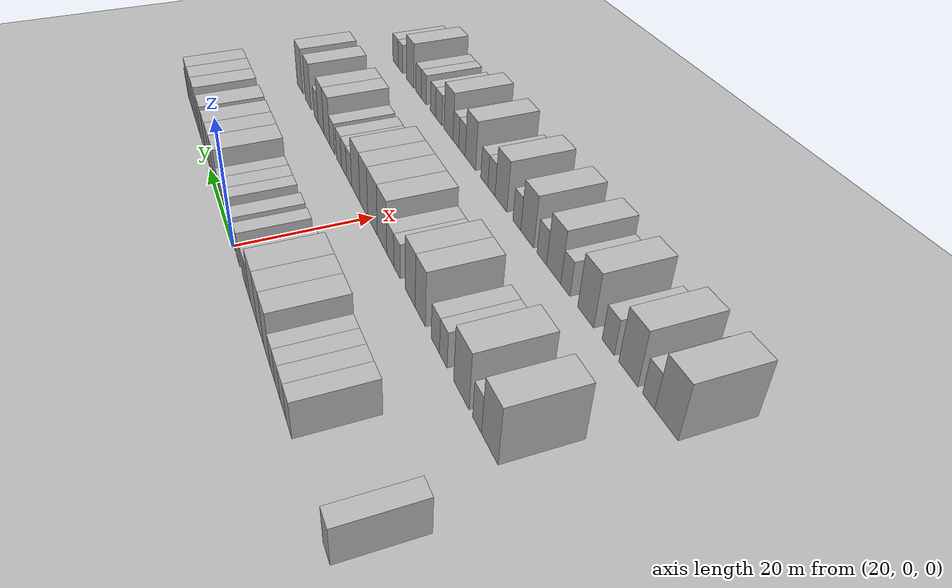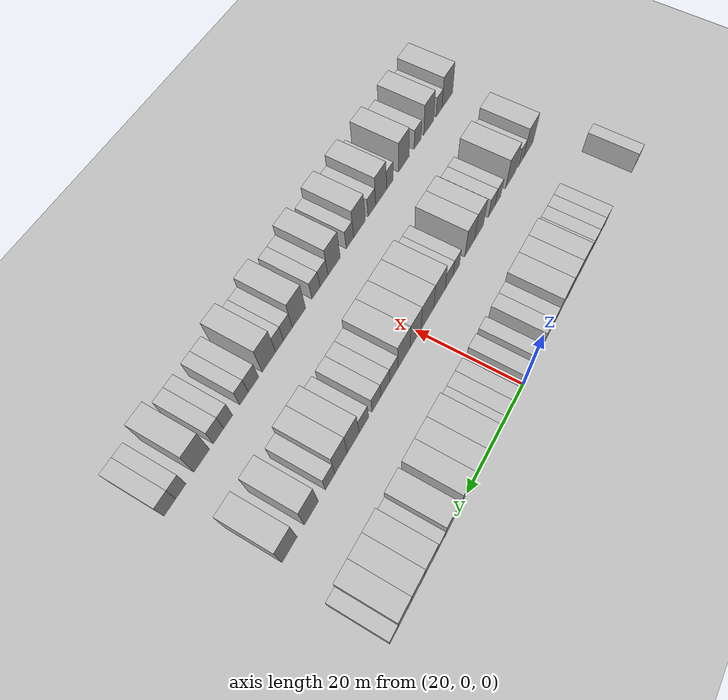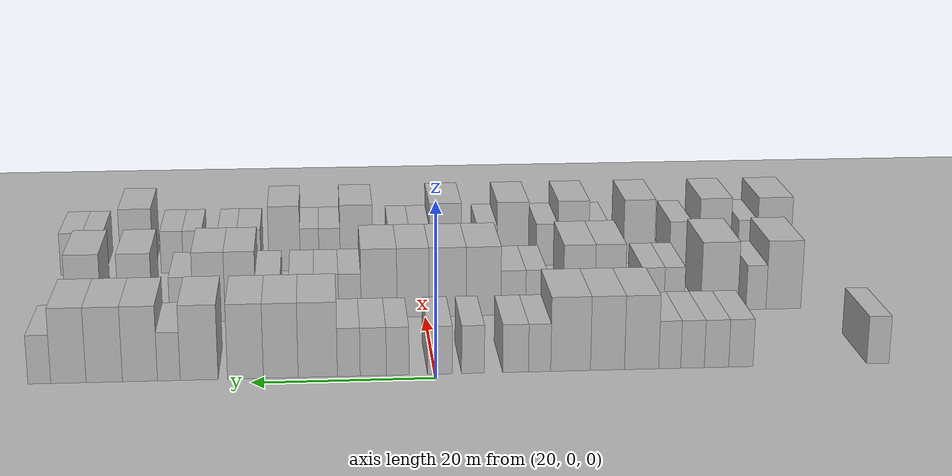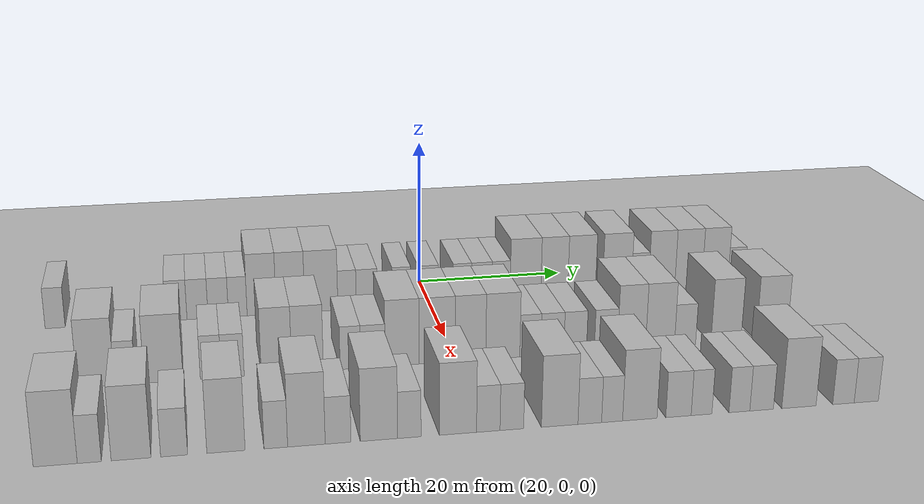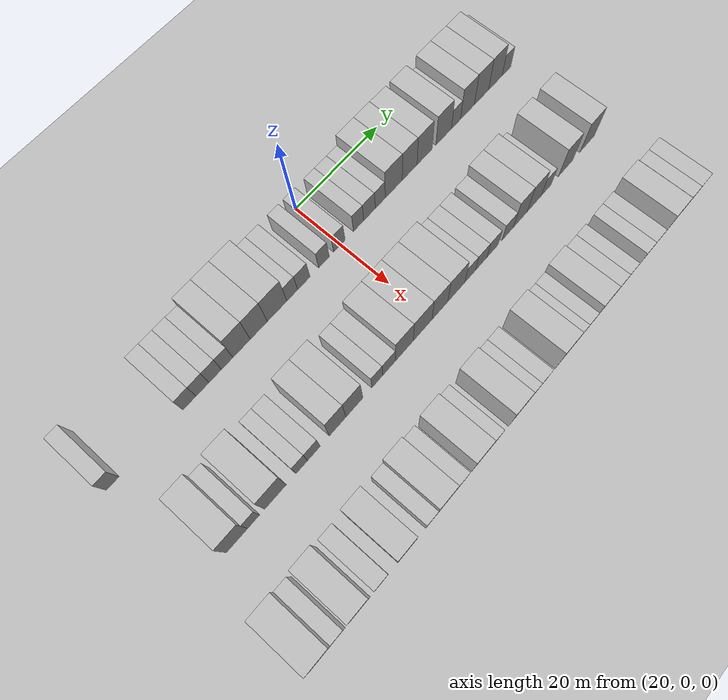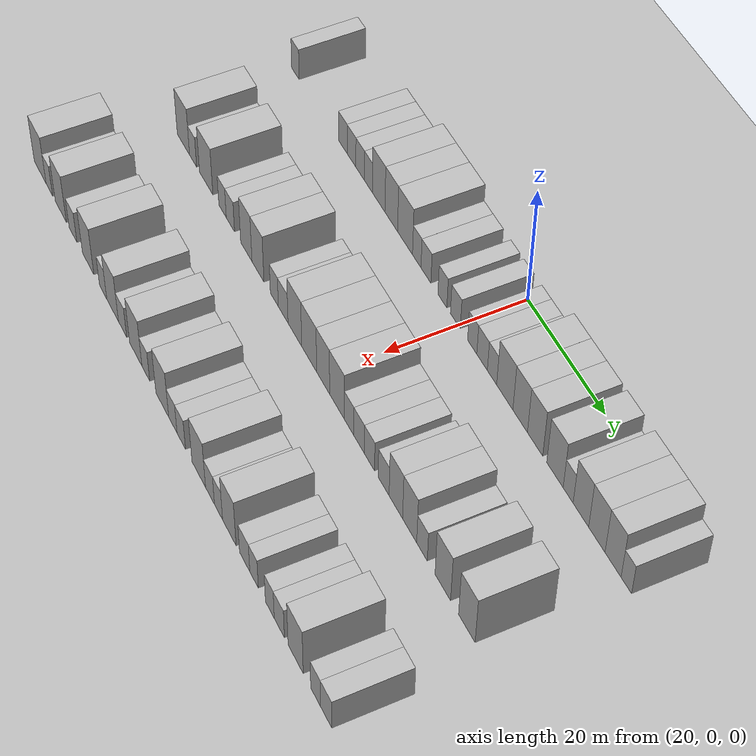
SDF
<sdf version="1.6">
 <world name="default">
  <include><name>ground_plane_1</name><uri>model://HANNAS_ground_plane</uri></include>
  <include>
   <name>ground_plane_2</name>
   <uri>model://HANNAS_ground_plane</uri>
   <pose>100 0 0  0 0 0</pose>
  </include>
  <model name="building_48">
   <static>1</static>
   <pose>25.0000 -48.8967 0 0.000000 0.000000 0.000000</pose>
   <link name="link">
    <pose>0 0 3.00 0 0 0</pose>
    <collision name="collision"><geometry><box><size>10.0000 2.5009 6.0000</size></box></geometry></collision>
    <visual name="visual">
     <cast_shadows>0</cast_shadows>
     <geometry><box><size>10.0000 2.5009 6.0000</size></box></geometry>
     <material>
      <script>
       <uri>model://HANNAS_wall/materials/scripts</uri>
       <uri>model://HANNAS_wall/materials/textures</uri>
       <name>vrc/HANNAS_wall</name>
      </script>
     </material>
    </visual>
   </link>
  </model>
  <model name="building_49">
   <static>1</static>
   <pose>25.0000 -33.5730 0 0.000000 0.000000 0.000000</pose>
   <link name="link">
    <pose>0 0 3.00 0 0 0</pose>
    <collision name="collision"><geometry><box><size>10.0000 2.7155 6.0000</size></box></geometry></collision>
    <visual name="visual">
     <cast_shadows>0</cast_shadows>
     <geometry><box><size>10.0000 2.7155 6.0000</size></box></geometry>
     <material>
      <script>
       <uri>model://HANNAS_wall/materials/scripts</uri>
       <uri>model://HANNAS_wall/materials/textures</uri>
       <name>vrc/HANNAS_wall</name>
      </script>
     </material>
    </visual>
   </link>
  </model>
  <model name="building_50">
   <static>1</static>
   <pose>25.0000 -30.8629 0 0.000000 0.000000 0.000000</pose>
   <link name="link">
    <pose>0 0 3.00 0 0 0</pose>
    <collision name="collision"><geometry><box><size>10.0000 2.7047 6.0000</size></box></geometry></collision>
    <visual name="visual">
     <cast_shadows>0</cast_shadows>
     <geometry><box><size>10.0000 2.7047 6.0000</size></box></geometry>
     <material>
      <script>
       <uri>model://HANNAS_wall/materials/scripts</uri>
       <uri>model://HANNAS_wall/materials/textures</uri>
       <name>vrc/HANNAS_wall</name>
      </script>
     </material>
    </visual>
   </link>
  </model>
  <model name="building_51">
   <static>1</static>
   <pose>25.0000 -28.1963 0 0.000000 0.000000 0.000000</pose>
   <link name="link">
    <pose>0 0 3.00 0 0 0</pose>
    <collision name="collision"><geometry><box><size>10.0000 2.6285 6.0000</size></box></geometry></collision>
    <visual name="visual">
     <cast_shadows>0</cast_shadows>
     <geometry><box><size>10.0000 2.6285 6.0000</size></box></geometry>
     <material>
      <script>
       <uri>model://HANNAS_wall/materials/scripts</uri>
       <uri>model://HANNAS_wall/materials/textures</uri>
       <name>vrc/HANNAS_wall</name>
      </script>
     </material>
    </visual>
   </link>
  </model>
  <model name="building_52">
   <static>1</static>
   <pose>25.0000 -25.6658 0 0.000000 0.000000 0.000000</pose>
   <link name="link">
    <pose>0 0 3.00 0 0 0</pose>
    <collision name="collision"><geometry><box><size>10.0000 2.4326 6.0000</size></box></geometry></collision>
    <visual name="visual">
     <cast_shadows>0</cast_shadows>
     <geometry><box><size>10.0000 2.4326 6.0000</size></box></geometry>
     <material>
      <script>
       <uri>model://HANNAS_wall/materials/scripts</uri>
       <uri>model://HANNAS_wall/materials/textures</uri>
       <name>vrc/HANNAS_wall</name>
      </script>
     </material>
    </visual>
   </link>
  </model>
  <model name="building_53">
   <static>1</static>
   <pose>25.0000 -22.5579 0 0.000000 0.000000 0.000000</pose>
   <link name="link">
    <pose>0 0 4.50 0 0 0</pose>
    <collision name="collision"><geometry><box><size>10.0000 3.7831 9.0000</size></box></geometry></collision>
    <visual name="visual">
     <cast_shadows>0</cast_shadows>
     <geometry><box><size>10.0000 3.7831 9.0000</size></box></geometry>
     <material>
      <script>
       <uri>model://HANNAS_wall/materials/scripts</uri>
       <uri>model://HANNAS_wall/materials/textures</uri>
       <name>vrc/HANNAS_wall</name>
      </script>
     </material>
    </visual>
   </link>
  </model>
  <model name="building_54">
   <static>1</static>
   <pose>25.0000 -18.7924 0 0.000000 0.000000 0.000000</pose>
   <link name="link">
    <pose>0 0 4.50 0 0 0</pose>
    <collision name="collision"><geometry><box><size>10.0000 3.7478 9.0000</size></box></geometry></collision>
    <visual name="visual">
     <cast_shadows>0</cast_shadows>
     <geometry><box><size>10.0000 3.7478 9.0000</size></box></geometry>
     <material>
      <script>
       <uri>model://HANNAS_wall/materials/scripts</uri>
       <uri>model://HANNAS_wall/materials/textures</uri>
       <name>vrc/HANNAS_wall</name>
      </script>
     </material>
    </visual>
   </link>
  </model>
  <model name="building_55">
   <static>1</static>
   <pose>25.0000 -14.7330 0 0.000000 0.000000 0.000000</pose>
   <link name="link">
    <pose>0 0 4.50 0 0 0</pose>
    <collision name="collision"><geometry><box><size>10.0000 4.3712 9.0000</size></box></geometry></collision>
    <visual name="visual">
     <cast_shadows>0</cast_shadows>
     <geometry><box><size>10.0000 4.3712 9.0000</size></box></geometry>
     <material>
      <script>
       <uri>model://HANNAS_wall/materials/scripts</uri>
       <uri>model://HANNAS_wall/materials/textures</uri>
       <name>vrc/HANNAS_wall</name>
      </script>
     </material>
    </visual>
   </link>
  </model>
  <model name="building_56">
   <static>1</static>
   <pose>25.0000 -11.3244 0 0.000000 0.000000 0.000000</pose>
   <link name="link">
    <pose>0 0 3.00 0 0 0</pose>
    <collision name="collision"><geometry><box><size>10.0000 2.4460 6.0000</size></box></geometry></collision>
    <visual name="visual">
     <cast_shadows>0</cast_shadows>
     <geometry><box><size>10.0000 2.4460 6.0000</size></box></geometry>
     <material>
      <script>
       <uri>model://HANNAS_wall/materials/scripts</uri>
       <uri>model://HANNAS_wall/materials/textures</uri>
       <name>vrc/HANNAS_wall</name>
      </script>
     </material>
    </visual>
   </link>
  </model>
  <model name="building_57">
   <static>1</static>
   <pose>25.0000 -8.6914 0 0.000000 0.000000 0.000000</pose>
   <link name="link">
    <pose>0 0 3.00 0 0 0</pose>
    <collision name="collision"><geometry><box><size>10.0000 2.8198 6.0000</size></box></geometry></collision>
    <visual name="visual">
     <cast_shadows>0</cast_shadows>
     <geometry><box><size>10.0000 2.8198 6.0000</size></box></geometry>
     <material>
      <script>
       <uri>model://HANNAS_wall/materials/scripts</uri>
       <uri>model://HANNAS_wall/materials/textures</uri>
       <name>vrc/HANNAS_wall</name>
      </script>
     </material>
    </visual>
   </link>
  </model>
  <model name="building_58">
   <static>1</static>
   <pose>25.0000 -4.0355 0 0.000000 0.000000 0.000000</pose>
   <link name="link">
    <pose>0 0 3.00 0 0 0</pose>
    <collision name="collision"><geometry><box><size>10.0000 2.4920 6.0000</size></box></geometry></collision>
    <visual name="visual">
     <cast_shadows>0</cast_shadows>
     <geometry><box><size>10.0000 2.4920 6.0000</size></box></geometry>
     <material>
      <script>
       <uri>model://HANNAS_wall/materials/scripts</uri>
       <uri>model://HANNAS_wall/materials/textures</uri>
       <name>vrc/HANNAS_wall</name>
      </script>
     </material>
    </visual>
   </link>
  </model>
  <model name="building_59">
   <static>1</static>
   <pose>25.0000 -0.4281 0 0.000000 0.000000 0.000000</pose>
   <link name="link">
    <pose>0 0 3.00 0 0 0</pose>
    <collision name="collision"><geometry><box><size>10.0000 2.7228 6.0000</size></box></geometry></collision>
    <visual name="visual">
     <cast_shadows>0</cast_shadows>
     <geometry><box><size>10.0000 2.7228 6.0000</size></box></geometry>
     <material>
      <script>
       <uri>model://HANNAS_wall/materials/scripts</uri>
       <uri>model://HANNAS_wall/materials/textures</uri>
       <name>vrc/HANNAS_wall</name>
      </script>
     </material>
    </visual>
   </link>
  </model>
  <model name="building_60">
   <static>1</static>
   <pose>25.0000 4.1761 0 0.000000 0.000000 0.000000</pose>
   <link name="link">
    <pose>0 0 3.00 0 0 0</pose>
    <collision name="collision"><geometry><box><size>10.0000 2.4855 6.0000</size></box></geometry></collision>
    <visual name="visual">
     <cast_shadows>0</cast_shadows>
     <geometry><box><size>10.0000 2.4855 6.0000</size></box></geometry>
     <material>
      <script>
       <uri>model://HANNAS_wall/materials/scripts</uri>
       <uri>model://HANNAS_wall/materials/textures</uri>
       <name>vrc/HANNAS_wall</name>
      </script>
     </material>
    </visual>
   </link>
  </model>
  <model name="building_61">
   <static>1</static>
   <pose>25.0000 6.8330 0 0.000000 0.000000 0.000000</pose>
   <link name="link">
    <pose>0 0 3.00 0 0 0</pose>
    <collision name="collision"><geometry><box><size>10.0000 2.8284 6.0000</size></box></geometry></collision>
    <visual name="visual">
     <cast_shadows>0</cast_shadows>
     <geometry><box><size>10.0000 2.8284 6.0000</size></box></geometry>
     <material>
      <script>
       <uri>model://HANNAS_wall/materials/scripts</uri>
       <uri>model://HANNAS_wall/materials/textures</uri>
       <name>vrc/HANNAS_wall</name>
      </script>
     </material>
    </visual>
   </link>
  </model>
  <model name="building_62">
   <static>1</static>
   <pose>25.0000 9.4824 0 0.000000 0.000000 0.000000</pose>
   <link name="link">
    <pose>0 0 3.00 0 0 0</pose>
    <collision name="collision"><geometry><box><size>10.0000 2.4702 6.0000</size></box></geometry></collision>
    <visual name="visual">
     <cast_shadows>0</cast_shadows>
     <geometry><box><size>10.0000 2.4702 6.0000</size></box></geometry>
     <material>
      <script>
       <uri>model://HANNAS_wall/materials/scripts</uri>
       <uri>model://HANNAS_wall/materials/textures</uri>
       <name>vrc/HANNAS_wall</name>
      </script>
     </material>
    </visual>
   </link>
  </model>
  <model name="building_63">
   <static>1</static>
   <pose>25.0000 12.8363 0 0.000000 0.000000 0.000000</pose>
   <link name="link">
    <pose>0 0 4.50 0 0 0</pose>
    <collision name="collision"><geometry><box><size>10.0000 4.2377 9.0000</size></box></geometry></collision>
    <visual name="visual">
     <cast_shadows>0</cast_shadows>
     <geometry><box><size>10.0000 4.2377 9.0000</size></box></geometry>
     <material>
      <script>
       <uri>model://HANNAS_wall/materials/scripts</uri>
       <uri>model://HANNAS_wall/materials/textures</uri>
       <name>vrc/HANNAS_wall</name>
      </script>
     </material>
    </visual>
   </link>
  </model>
  <model name="building_64">
   <static>1</static>
   <pose>25.0000 16.8305 0 0.000000 0.000000 0.000000</pose>
   <link name="link">
    <pose>0 0 4.50 0 0 0</pose>
    <collision name="collision"><geometry><box><size>10.0000 3.7506 9.0000</size></box></geometry></collision>
    <visual name="visual">
     <cast_shadows>0</cast_shadows>
     <geometry><box><size>10.0000 3.7506 9.0000</size></box></geometry>
     <material>
      <script>
       <uri>model://HANNAS_wall/materials/scripts</uri>
       <uri>model://HANNAS_wall/materials/textures</uri>
       <name>vrc/HANNAS_wall</name>
      </script>
     </material>
    </visual>
   </link>
  </model>
  <model name="building_65">
   <static>1</static>
   <pose>25.0000 20.6405 0 0.000000 0.000000 0.000000</pose>
   <link name="link">
    <pose>0 0 4.50 0 0 0</pose>
    <collision name="collision"><geometry><box><size>10.0000 3.8695 9.0000</size></box></geometry></collision>
    <visual name="visual">
     <cast_shadows>0</cast_shadows>
     <geometry><box><size>10.0000 3.8695 9.0000</size></box></geometry>
     <material>
      <script>
       <uri>model://HANNAS_wall/materials/scripts</uri>
       <uri>model://HANNAS_wall/materials/textures</uri>
       <name>vrc/HANNAS_wall</name>
      </script>
     </material>
    </visual>
   </link>
  </model>
  <model name="building_66">
   <static>1</static>
   <pose>25.0000 25.6066 0 0.000000 0.000000 0.000000</pose>
   <link name="link">
    <pose>0 0 4.50 0 0 0</pose>
    <collision name="collision"><geometry><box><size>10.0000 4.0626 9.0000</size></box></geometry></collision>
    <visual name="visual">
     <cast_shadows>0</cast_shadows>
     <geometry><box><size>10.0000 4.0626 9.0000</size></box></geometry>
     <material>
      <script>
       <uri>model://HANNAS_wall/materials/scripts</uri>
       <uri>model://HANNAS_wall/materials/textures</uri>
       <name>vrc/HANNAS_wall</name>
      </script>
     </material>
    </visual>
   </link>
  </model>
  <model name="building_67">
   <static>1</static>
   <pose>25.0000 28.8543 0 0.000000 0.000000 0.000000</pose>
   <link name="link">
    <pose>0 0 3.00 0 0 0</pose>
    <collision name="collision"><geometry><box><size>10.0000 2.4327 6.0000</size></box></geometry></collision>
    <visual name="visual">
     <cast_shadows>0</cast_shadows>
     <geometry><box><size>10.0000 2.4327 6.0000</size></box></geometry>
     <material>
      <script>
       <uri>model://HANNAS_wall/materials/scripts</uri>
       <uri>model://HANNAS_wall/materials/textures</uri>
       <name>vrc/HANNAS_wall</name>
      </script>
     </material>
    </visual>
   </link>
  </model>
  <model name="building_68">
   <static>1</static>
   <pose>25.0000 31.9422 0 0.000000 0.000000 0.000000</pose>
   <link name="link">
    <pose>0 0 4.50 0 0 0</pose>
    <collision name="collision"><geometry><box><size>10.0000 3.7432 9.0000</size></box></geometry></collision>
    <visual name="visual">
     <cast_shadows>0</cast_shadows>
     <geometry><box><size>10.0000 3.7432 9.0000</size></box></geometry>
     <material>
      <script>
       <uri>model://HANNAS_wall/materials/scripts</uri>
       <uri>model://HANNAS_wall/materials/textures</uri>
       <name>vrc/HANNAS_wall</name>
      </script>
     </material>
    </visual>
   </link>
  </model>
  <model name="building_69">
   <static>1</static>
   <pose>25.0000 35.7552 0 0.000000 0.000000 0.000000</pose>
   <link name="link">
    <pose>0 0 4.50 0 0 0</pose>
    <collision name="collision"><geometry><box><size>10.0000 3.8828 9.0000</size></box></geometry></collision>
    <visual name="visual">
     <cast_shadows>0</cast_shadows>
     <geometry><box><size>10.0000 3.8828 9.0000</size></box></geometry>
     <material>
      <script>
       <uri>model://HANNAS_wall/materials/scripts</uri>
       <uri>model://HANNAS_wall/materials/textures</uri>
       <name>vrc/HANNAS_wall</name>
      </script>
     </material>
    </visual>
   </link>
  </model>
  <model name="building_70">
   <static>1</static>
   <pose>25.0000 39.5718 0 0.000000 0.000000 0.000000</pose>
   <link name="link">
    <pose>0 0 4.50 0 0 0</pose>
    <collision name="collision"><geometry><box><size>10.0000 3.7503 9.0000</size></box></geometry></collision>
    <visual name="visual">
     <cast_shadows>0</cast_shadows>
     <geometry><box><size>10.0000 3.7503 9.0000</size></box></geometry>
     <material>
      <script>
       <uri>model://HANNAS_wall/materials/scripts</uri>
       <uri>model://HANNAS_wall/materials/textures</uri>
       <name>vrc/HANNAS_wall</name>
      </script>
     </material>
    </visual>
   </link>
  </model>
  <model name="building_71">
   <static>1</static>
   <pose>25.0000 42.6568 0 0.000000 0.000000 0.000000</pose>
   <link name="link">
    <pose>0 0 3.00 0 0 0</pose>
    <collision name="collision"><geometry><box><size>10.0000 2.4197 6.0000</size></box></geometry></collision>
    <visual name="visual">
     <cast_shadows>0</cast_shadows>
     <geometry><box><size>10.0000 2.4197 6.0000</size></box></geometry>
     <material>
      <script>
       <uri>model://HANNAS_wall/materials/scripts</uri>
       <uri>model://HANNAS_wall/materials/textures</uri>
       <name>vrc/HANNAS_wall</name>
      </script>
     </material>
    </visual>
   </link>
  </model>
  <model name="building_161">
   <static>1</static>
   <pose>44.0000 -42.9296 0 0.000000 0.000000 0.000000</pose>
   <link name="link">
    <pose>0 0 4.50 0 0 0</pose>
    <collision name="collision"><geometry><box><size>10.0000 4.2446 9.0000</size></box></geometry></collision>
    <visual name="visual">
     <cast_shadows>0</cast_shadows>
     <geometry><box><size>10.0000 4.2446 9.0000</size></box></geometry>
     <material>
      <script>
       <uri>model://HANNAS_wall/materials/scripts</uri>
       <uri>model://HANNAS_wall/materials/textures</uri>
       <name>vrc/HANNAS_wall</name>
      </script>
     </material>
    </visual>
   </link>
  </model>
  <model name="building_162">
   <static>1</static>
   <pose>44.0000 -39.5972 0 0.000000 0.000000 0.000000</pose>
   <link name="link">
    <pose>0 0 3.00 0 0 0</pose>
    <collision name="collision"><geometry><box><size>10.0000 2.4203 6.0000</size></box></geometry></collision>
    <visual name="visual">
     <cast_shadows>0</cast_shadows>
     <geometry><box><size>10.0000 2.4203 6.0000</size></box></geometry>
     <material>
      <script>
       <uri>model://HANNAS_wall/materials/scripts</uri>
       <uri>model://HANNAS_wall/materials/textures</uri>
       <name>vrc/HANNAS_wall</name>
      </script>
     </material>
    </visual>
   </link>
  </model>
  <model name="building_163">
   <static>1</static>
   <pose>44.0000 -35.1427 0 0.000000 0.000000 0.000000</pose>
   <link name="link">
    <pose>0 0 4.50 0 0 0</pose>
    <collision name="collision"><geometry><box><size>10.0000 4.4886 9.0000</size></box></geometry></collision>
    <visual name="visual">
     <cast_shadows>0</cast_shadows>
     <geometry><box><size>10.0000 4.4886 9.0000</size></box></geometry>
     <material>
      <script>
       <uri>model://HANNAS_wall/materials/scripts</uri>
       <uri>model://HANNAS_wall/materials/textures</uri>
       <name>vrc/HANNAS_wall</name>
      </script>
     </material>
    </visual>
   </link>
  </model>
  <model name="building_164">
   <static>1</static>
   <pose>44.0000 -29.6784 0 0.000000 0.000000 0.000000</pose>
   <link name="link">
    <pose>0 0 3.00 0 0 0</pose>
    <collision name="collision"><geometry><box><size>10.0000 2.4401 6.0000</size></box></geometry></collision>
    <visual name="visual">
     <cast_shadows>0</cast_shadows>
     <geometry><box><size>10.0000 2.4401 6.0000</size></box></geometry>
     <material>
      <script>
       <uri>model://HANNAS_wall/materials/scripts</uri>
       <uri>model://HANNAS_wall/materials/textures</uri>
       <name>vrc/HANNAS_wall</name>
      </script>
     </material>
    </visual>
   </link>
  </model>
  <model name="building_165">
   <static>1</static>
   <pose>44.0000 -27.1047 0 0.000000 0.000000 0.000000</pose>
   <link name="link">
    <pose>0 0 3.00 0 0 0</pose>
    <collision name="collision"><geometry><box><size>10.0000 2.7074 6.0000</size></box></geometry></collision>
    <visual name="visual">
     <cast_shadows>0</cast_shadows>
     <geometry><box><size>10.0000 2.7074 6.0000</size></box></geometry>
     <material>
      <script>
       <uri>model://HANNAS_wall/materials/scripts</uri>
       <uri>model://HANNAS_wall/materials/textures</uri>
       <name>vrc/HANNAS_wall</name>
      </script>
     </material>
    </visual>
   </link>
  </model>
  <model name="building_166">
   <static>1</static>
   <pose>44.0000 -21.9425 0 0.000000 0.000000 0.000000</pose>
   <link name="link">
    <pose>0 0 4.50 0 0 0</pose>
    <collision name="collision"><geometry><box><size>10.0000 3.6170 9.0000</size></box></geometry></collision>
    <visual name="visual">
     <cast_shadows>0</cast_shadows>
     <geometry><box><size>10.0000 3.6170 9.0000</size></box></geometry>
     <material>
      <script>
       <uri>model://HANNAS_wall/materials/scripts</uri>
       <uri>model://HANNAS_wall/materials/textures</uri>
       <name>vrc/HANNAS_wall</name>
      </script>
     </material>
    </visual>
   </link>
  </model>
  <model name="building_167">
   <static>1</static>
   <pose>44.0000 -18.2476 0 0.000000 0.000000 0.000000</pose>
   <link name="link">
    <pose>0 0 4.50 0 0 0</pose>
    <collision name="collision"><geometry><box><size>10.0000 3.7728 9.0000</size></box></geometry></collision>
    <visual name="visual">
     <cast_shadows>0</cast_shadows>
     <geometry><box><size>10.0000 3.7728 9.0000</size></box></geometry>
     <material>
      <script>
       <uri>model://HANNAS_wall/materials/scripts</uri>
       <uri>model://HANNAS_wall/materials/textures</uri>
       <name>vrc/HANNAS_wall</name>
      </script>
     </material>
    </visual>
   </link>
  </model>
  <model name="building_168">
   <static>1</static>
   <pose>44.0000 -13.1199 0 0.000000 0.000000 0.000000</pose>
   <link name="link">
    <pose>0 0 3.00 0 0 0</pose>
    <collision name="collision"><geometry><box><size>10.0000 2.4826 6.0000</size></box></geometry></collision>
    <visual name="visual">
     <cast_shadows>0</cast_shadows>
     <geometry><box><size>10.0000 2.4826 6.0000</size></box></geometry>
     <material>
      <script>
       <uri>model://HANNAS_wall/materials/scripts</uri>
       <uri>model://HANNAS_wall/materials/textures</uri>
       <name>vrc/HANNAS_wall</name>
      </script>
     </material>
    </visual>
   </link>
  </model>
  <model name="building_169">
   <static>1</static>
   <pose>44.0000 -10.4026 0 0.000000 0.000000 0.000000</pose>
   <link name="link">
    <pose>0 0 3.00 0 0 0</pose>
    <collision name="collision"><geometry><box><size>10.0000 2.9519 6.0000</size></box></geometry></collision>
    <visual name="visual">
     <cast_shadows>0</cast_shadows>
     <geometry><box><size>10.0000 2.9519 6.0000</size></box></geometry>
     <material>
      <script>
       <uri>model://HANNAS_wall/materials/scripts</uri>
       <uri>model://HANNAS_wall/materials/textures</uri>
       <name>vrc/HANNAS_wall</name>
      </script>
     </material>
    </visual>
   </link>
  </model>
  <model name="building_170">
   <static>1</static>
   <pose>44.0000 -6.8598 0 0.000000 0.000000 0.000000</pose>
   <link name="link">
    <pose>0 0 4.50 0 0 0</pose>
    <collision name="collision"><geometry><box><size>10.0000 4.1337 9.0000</size></box></geometry></collision>
    <visual name="visual">
     <cast_shadows>0</cast_shadows>
     <geometry><box><size>10.0000 4.1337 9.0000</size></box></geometry>
     <material>
      <script>
       <uri>model://HANNAS_wall/materials/scripts</uri>
       <uri>model://HANNAS_wall/materials/textures</uri>
       <name>vrc/HANNAS_wall</name>
      </script>
     </material>
    </visual>
   </link>
  </model>
  <model name="building_171">
   <static>1</static>
   <pose>44.0000 -2.5781 0 0.000000 0.000000 0.000000</pose>
   <link name="link">
    <pose>0 0 4.50 0 0 0</pose>
    <collision name="collision"><geometry><box><size>10.0000 4.4298 9.0000</size></box></geometry></collision>
    <visual name="visual">
     <cast_shadows>0</cast_shadows>
     <geometry><box><size>10.0000 4.4298 9.0000</size></box></geometry>
     <material>
      <script>
       <uri>model://HANNAS_wall/materials/scripts</uri>
       <uri>model://HANNAS_wall/materials/textures</uri>
       <name>vrc/HANNAS_wall</name>
      </script>
     </material>
    </visual>
   </link>
  </model>
  <model name="building_172">
   <static>1</static>
   <pose>44.0000 1.5291 0 0.000000 0.000000 0.000000</pose>
   <link name="link">
    <pose>0 0 4.50 0 0 0</pose>
    <collision name="collision"><geometry><box><size>10.0000 3.7846 9.0000</size></box></geometry></collision>
    <visual name="visual">
     <cast_shadows>0</cast_shadows>
     <geometry><box><size>10.0000 3.7846 9.0000</size></box></geometry>
     <material>
      <script>
       <uri>model://HANNAS_wall/materials/scripts</uri>
       <uri>model://HANNAS_wall/materials/textures</uri>
       <name>vrc/HANNAS_wall</name>
      </script>
     </material>
    </visual>
   </link>
  </model>
  <model name="building_173">
   <static>1</static>
   <pose>44.0000 5.5427 0 0.000000 0.000000 0.000000</pose>
   <link name="link">
    <pose>0 0 4.50 0 0 0</pose>
    <collision name="collision"><geometry><box><size>10.0000 4.2427 9.0000</size></box></geometry></collision>
    <visual name="visual">
     <cast_shadows>0</cast_shadows>
     <geometry><box><size>10.0000 4.2427 9.0000</size></box></geometry>
     <material>
      <script>
       <uri>model://HANNAS_wall/materials/scripts</uri>
       <uri>model://HANNAS_wall/materials/textures</uri>
       <name>vrc/HANNAS_wall</name>
      </script>
     </material>
    </visual>
   </link>
  </model>
  <model name="building_174">
   <static>1</static>
   <pose>44.0000 8.9869 0 0.000000 0.000000 0.000000</pose>
   <link name="link">
    <pose>0 0 3.00 0 0 0</pose>
    <collision name="collision"><geometry><box><size>10.0000 2.6456 6.0000</size></box></geometry></collision>
    <visual name="visual">
     <cast_shadows>0</cast_shadows>
     <geometry><box><size>10.0000 2.6456 6.0000</size></box></geometry>
     <material>
      <script>
       <uri>model://HANNAS_wall/materials/scripts</uri>
       <uri>model://HANNAS_wall/materials/textures</uri>
       <name>vrc/HANNAS_wall</name>
      </script>
     </material>
    </visual>
   </link>
  </model>
  <model name="building_175">
   <static>1</static>
   <pose>44.0000 11.7543 0 0.000000 0.000000 0.000000</pose>
   <link name="link">
    <pose>0 0 3.00 0 0 0</pose>
    <collision name="collision"><geometry><box><size>10.0000 2.8892 6.0000</size></box></geometry></collision>
    <visual name="visual">
     <cast_shadows>0</cast_shadows>
     <geometry><box><size>10.0000 2.8892 6.0000</size></box></geometry>
     <material>
      <script>
       <uri>model://HANNAS_wall/materials/scripts</uri>
       <uri>model://HANNAS_wall/materials/textures</uri>
       <name>vrc/HANNAS_wall</name>
      </script>
     </material>
    </visual>
   </link>
  </model>
  <model name="building_176">
   <static>1</static>
   <pose>44.0000 14.6311 0 0.000000 0.000000 0.000000</pose>
   <link name="link">
    <pose>0 0 3.00 0 0 0</pose>
    <collision name="collision"><geometry><box><size>10.0000 2.8642 6.0000</size></box></geometry></collision>
    <visual name="visual">
     <cast_shadows>0</cast_shadows>
     <geometry><box><size>10.0000 2.8642 6.0000</size></box></geometry>
     <material>
      <script>
       <uri>model://HANNAS_wall/materials/scripts</uri>
       <uri>model://HANNAS_wall/materials/textures</uri>
       <name>vrc/HANNAS_wall</name>
      </script>
     </material>
    </visual>
   </link>
  </model>
  <model name="building_177">
   <static>1</static>
   <pose>44.0000 18.5380 0 0.000000 0.000000 0.000000</pose>
   <link name="link">
    <pose>0 0 3.00 0 0 0</pose>
    <collision name="collision"><geometry><box><size>10.0000 2.9497 6.0000</size></box></geometry></collision>
    <visual name="visual">
     <cast_shadows>0</cast_shadows>
     <geometry><box><size>10.0000 2.9497 6.0000</size></box></geometry>
     <material>
      <script>
       <uri>model://HANNAS_wall/materials/scripts</uri>
       <uri>model://HANNAS_wall/materials/textures</uri>
       <name>vrc/HANNAS_wall</name>
      </script>
     </material>
    </visual>
   </link>
  </model>
  <model name="building_178">
   <static>1</static>
   <pose>44.0000 21.8161 0 0.000000 0.000000 0.000000</pose>
   <link name="link">
    <pose>0 0 4.50 0 0 0</pose>
    <collision name="collision"><geometry><box><size>10.0000 3.6066 9.0000</size></box></geometry></collision>
    <visual name="visual">
     <cast_shadows>0</cast_shadows>
     <geometry><box><size>10.0000 3.6066 9.0000</size></box></geometry>
     <material>
      <script>
       <uri>model://HANNAS_wall/materials/scripts</uri>
       <uri>model://HANNAS_wall/materials/textures</uri>
       <name>vrc/HANNAS_wall</name>
      </script>
     </material>
    </visual>
   </link>
  </model>
  <model name="building_179">
   <static>1</static>
   <pose>44.0000 25.4821 0 0.000000 0.000000 0.000000</pose>
   <link name="link">
    <pose>0 0 4.50 0 0 0</pose>
    <collision name="collision"><geometry><box><size>10.0000 3.7253 9.0000</size></box></geometry></collision>
    <visual name="visual">
     <cast_shadows>0</cast_shadows>
     <geometry><box><size>10.0000 3.7253 9.0000</size></box></geometry>
     <material>
      <script>
       <uri>model://HANNAS_wall/materials/scripts</uri>
       <uri>model://HANNAS_wall/materials/textures</uri>
       <name>vrc/HANNAS_wall</name>
      </script>
     </material>
    </visual>
   </link>
  </model>
  <model name="building_180">
   <static>1</static>
   <pose>44.0000 28.7168 0 0.000000 0.000000 0.000000</pose>
   <link name="link">
    <pose>0 0 3.00 0 0 0</pose>
    <collision name="collision"><geometry><box><size>10.0000 2.7443 6.0000</size></box></geometry></collision>
    <visual name="visual">
     <cast_shadows>0</cast_shadows>
     <geometry><box><size>10.0000 2.7443 6.0000</size></box></geometry>
     <material>
      <script>
       <uri>model://HANNAS_wall/materials/scripts</uri>
       <uri>model://HANNAS_wall/materials/textures</uri>
       <name>vrc/HANNAS_wall</name>
      </script>
     </material>
    </visual>
   </link>
  </model>
  <model name="building_181">
   <static>1</static>
   <pose>44.0000 34.0551 0 0.000000 0.000000 0.000000</pose>
   <link name="link">
    <pose>0 0 4.50 0 0 0</pose>
    <collision name="collision"><geometry><box><size>10.0000 3.9322 9.0000</size></box></geometry></collision>
    <visual name="visual">
     <cast_shadows>0</cast_shadows>
     <geometry><box><size>10.0000 3.9322 9.0000</size></box></geometry>
     <material>
      <script>
       <uri>model://HANNAS_wall/materials/scripts</uri>
       <uri>model://HANNAS_wall/materials/textures</uri>
       <name>vrc/HANNAS_wall</name>
      </script>
     </material>
    </visual>
   </link>
  </model>
  <model name="building_182">
   <static>1</static>
   <pose>44.0000 40.0639 0 0.000000 0.000000 0.000000</pose>
   <link name="link">
    <pose>0 0 4.50 0 0 0</pose>
    <collision name="collision"><geometry><box><size>10.0000 4.0856 9.0000</size></box></geometry></collision>
    <visual name="visual">
     <cast_shadows>0</cast_shadows>
     <geometry><box><size>10.0000 4.0856 9.0000</size></box></geometry>
     <material>
      <script>
       <uri>model://HANNAS_wall/materials/scripts</uri>
       <uri>model://HANNAS_wall/materials/textures</uri>
       <name>vrc/HANNAS_wall</name>
      </script>
     </material>
    </visual>
   </link>
  </model>
  <model name="building_282">
   <static>1</static>
   <pose>63.0000 -46.2076 0 0.000000 0.000000 0.000000</pose>
   <link name="link">
    <pose>0 0 4.50 0 0 0</pose>
    <collision name="collision"><geometry><box><size>10.0000 4.4692 9.0000</size></box></geometry></collision>
    <visual name="visual">
     <cast_shadows>0</cast_shadows>
     <geometry><box><size>10.0000 4.4692 9.0000</size></box></geometry>
     <material>
      <script>
       <uri>model://HANNAS_wall/materials/scripts</uri>
       <uri>model://HANNAS_wall/materials/textures</uri>
       <name>vrc/HANNAS_wall</name>
      </script>
     </material>
    </visual>
   </link>
  </model>
  <model name="building_283">
   <static>1</static>
   <pose>63.0000 -42.7475 0 0.000000 0.000000 0.000000</pose>
   <link name="link">
    <pose>0 0 3.00 0 0 0</pose>
    <collision name="collision"><geometry><box><size>10.0000 2.4510 6.0000</size></box></geometry></collision>
    <visual name="visual">
     <cast_shadows>0</cast_shadows>
     <geometry><box><size>10.0000 2.4510 6.0000</size></box></geometry>
     <material>
      <script>
       <uri>model://HANNAS_wall/materials/scripts</uri>
       <uri>model://HANNAS_wall/materials/textures</uri>
       <name>vrc/HANNAS_wall</name>
      </script>
     </material>
    </visual>
   </link>
  </model>
  <model name="building_284">
   <static>1</static>
   <pose>63.0000 -38.4723 0 0.000000 0.000000 0.000000</pose>
   <link name="link">
    <pose>0 0 4.50 0 0 0</pose>
    <collision name="collision"><geometry><box><size>10.0000 4.0995 9.0000</size></box></geometry></collision>
    <visual name="visual">
     <cast_shadows>0</cast_shadows>
     <geometry><box><size>10.0000 4.0995 9.0000</size></box></geometry>
     <material>
      <script>
       <uri>model://HANNAS_wall/materials/scripts</uri>
       <uri>model://HANNAS_wall/materials/textures</uri>
       <name>vrc/HANNAS_wall</name>
      </script>
     </material>
    </visual>
   </link>
  </model>
  <model name="building_285">
   <static>1</static>
   <pose>63.0000 -34.0182 0 0.000000 0.000000 0.000000</pose>
   <link name="link">
    <pose>0 0 3.00 0 0 0</pose>
    <collision name="collision"><geometry><box><size>10.0000 2.8085 6.0000</size></box></geometry></collision>
    <visual name="visual">
     <cast_shadows>0</cast_shadows>
     <geometry><box><size>10.0000 2.8085 6.0000</size></box></geometry>
     <material>
      <script>
       <uri>model://HANNAS_wall/materials/scripts</uri>
       <uri>model://HANNAS_wall/materials/textures</uri>
       <name>vrc/HANNAS_wall</name>
      </script>
     </material>
    </visual>
   </link>
  </model>
  <model name="building_286">
   <static>1</static>
   <pose>63.0000 -28.6041 0 0.000000 0.000000 0.000000</pose>
   <link name="link">
    <pose>0 0 4.50 0 0 0</pose>
    <collision name="collision"><geometry><box><size>10.0000 4.0199 9.0000</size></box></geometry></collision>
    <visual name="visual">
     <cast_shadows>0</cast_shadows>
     <geometry><box><size>10.0000 4.0199 9.0000</size></box></geometry>
     <material>
      <script>
       <uri>model://HANNAS_wall/materials/scripts</uri>
       <uri>model://HANNAS_wall/materials/textures</uri>
       <name>vrc/HANNAS_wall</name>
      </script>
     </material>
    </visual>
   </link>
  </model>
  <model name="building_287">
   <static>1</static>
   <pose>63.0000 -23.3412 0 0.000000 0.000000 0.000000</pose>
   <link name="link">
    <pose>0 0 3.00 0 0 0</pose>
    <collision name="collision"><geometry><box><size>10.0000 2.5058 6.0000</size></box></geometry></collision>
    <visual name="visual">
     <cast_shadows>0</cast_shadows>
     <geometry><box><size>10.0000 2.5058 6.0000</size></box></geometry>
     <material>
      <script>
       <uri>model://HANNAS_wall/materials/scripts</uri>
       <uri>model://HANNAS_wall/materials/textures</uri>
       <name>vrc/HANNAS_wall</name>
      </script>
     </material>
    </visual>
   </link>
  </model>
  <model name="building_288">
   <static>1</static>
   <pose>63.0000 -20.0807 0 0.000000 0.000000 0.000000</pose>
   <link name="link">
    <pose>0 0 4.50 0 0 0</pose>
    <collision name="collision"><geometry><box><size>10.0000 4.0152 9.0000</size></box></geometry></collision>
    <visual name="visual">
     <cast_shadows>0</cast_shadows>
     <geometry><box><size>10.0000 4.0152 9.0000</size></box></geometry>
     <material>
      <script>
       <uri>model://HANNAS_wall/materials/scripts</uri>
       <uri>model://HANNAS_wall/materials/textures</uri>
       <name>vrc/HANNAS_wall</name>
      </script>
     </material>
    </visual>
   </link>
  </model>
  <model name="building_289">
   <static>1</static>
   <pose>63.0000 -16.6858 0 0.000000 0.000000 0.000000</pose>
   <link name="link">
    <pose>0 0 3.00 0 0 0</pose>
    <collision name="collision"><geometry><box><size>10.0000 2.7747 6.0000</size></box></geometry></collision>
    <visual name="visual">
     <cast_shadows>0</cast_shadows>
     <geometry><box><size>10.0000 2.7747 6.0000</size></box></geometry>
     <material>
      <script>
       <uri>model://HANNAS_wall/materials/scripts</uri>
       <uri>model://HANNAS_wall/materials/textures</uri>
       <name>vrc/HANNAS_wall</name>
      </script>
     </material>
    </visual>
   </link>
  </model>
  <model name="building_290">
   <static>1</static>
   <pose>63.0000 -12.2701 0 0.000000 0.000000 0.000000</pose>
   <link name="link">
    <pose>0 0 4.50 0 0 0</pose>
    <collision name="collision"><geometry><box><size>10.0000 4.0566 9.0000</size></box></geometry></collision>
    <visual name="visual">
     <cast_shadows>0</cast_shadows>
     <geometry><box><size>10.0000 4.0566 9.0000</size></box></geometry>
     <material>
      <script>
       <uri>model://HANNAS_wall/materials/scripts</uri>
       <uri>model://HANNAS_wall/materials/textures</uri>
       <name>vrc/HANNAS_wall</name>
      </script>
     </material>
    </visual>
   </link>
  </model>
  <model name="building_291">
   <static>1</static>
   <pose>63.0000 -8.9589 0 0.000000 0.000000 0.000000</pose>
   <link name="link">
    <pose>0 0 3.00 0 0 0</pose>
    <collision name="collision"><geometry><box><size>10.0000 2.5659 6.0000</size></box></geometry></collision>
    <visual name="visual">
     <cast_shadows>0</cast_shadows>
     <geometry><box><size>10.0000 2.5659 6.0000</size></box></geometry>
     <material>
      <script>
       <uri>model://HANNAS_wall/materials/scripts</uri>
       <uri>model://HANNAS_wall/materials/textures</uri>
       <name>vrc/HANNAS_wall</name>
      </script>
     </material>
    </visual>
   </link>
  </model>
  <model name="building_292">
   <static>1</static>
   <pose>63.0000 -3.6153 0 0.000000 0.000000 0.000000</pose>
   <link name="link">
    <pose>0 0 4.50 0 0 0</pose>
    <collision name="collision"><geometry><box><size>10.0000 4.1213 9.0000</size></box></geometry></collision>
    <visual name="visual">
     <cast_shadows>0</cast_shadows>
     <geometry><box><size>10.0000 4.1213 9.0000</size></box></geometry>
     <material>
      <script>
       <uri>model://HANNAS_wall/materials/scripts</uri>
       <uri>model://HANNAS_wall/materials/textures</uri>
       <name>vrc/HANNAS_wall</name>
      </script>
     </material>
    </visual>
   </link>
  </model>
  <model name="building_293">
   <static>1</static>
   <pose>63.0000 -0.2486 0 0.000000 0.000000 0.000000</pose>
   <link name="link">
    <pose>0 0 3.00 0 0 0</pose>
    <collision name="collision"><geometry><box><size>10.0000 2.6121 6.0000</size></box></geometry></collision>
    <visual name="visual">
     <cast_shadows>0</cast_shadows>
     <geometry><box><size>10.0000 2.6121 6.0000</size></box></geometry>
     <material>
      <script>
       <uri>model://HANNAS_wall/materials/scripts</uri>
       <uri>model://HANNAS_wall/materials/textures</uri>
       <name>vrc/HANNAS_wall</name>
      </script>
     </material>
    </visual>
   </link>
  </model>
  <model name="building_294">
   <static>1</static>
   <pose>63.0000 2.3782 0 0.000000 0.000000 0.000000</pose>
   <link name="link">
    <pose>0 0 3.00 0 0 0</pose>
    <collision name="collision"><geometry><box><size>10.0000 2.6414 6.0000</size></box></geometry></collision>
    <visual name="visual">
     <cast_shadows>0</cast_shadows>
     <geometry><box><size>10.0000 2.6414 6.0000</size></box></geometry>
     <material>
      <script>
       <uri>model://HANNAS_wall/materials/scripts</uri>
       <uri>model://HANNAS_wall/materials/textures</uri>
       <name>vrc/HANNAS_wall</name>
      </script>
     </material>
    </visual>
   </link>
  </model>
  <model name="building_295">
   <static>1</static>
   <pose>63.0000 7.7644 0 0.000000 0.000000 0.000000</pose>
   <link name="link">
    <pose>0 0 4.50 0 0 0</pose>
    <collision name="collision"><geometry><box><size>10.0000 4.1311 9.0000</size></box></geometry></collision>
    <visual name="visual">
     <cast_shadows>0</cast_shadows>
     <geometry><box><size>10.0000 4.1311 9.0000</size></box></geometry>
     <material>
      <script>
       <uri>model://HANNAS_wall/materials/scripts</uri>
       <uri>model://HANNAS_wall/materials/textures</uri>
       <name>vrc/HANNAS_wall</name>
      </script>
     </material>
    </visual>
   </link>
  </model>
  <model name="building_296">
   <static>1</static>
   <pose>63.0000 11.1751 0 0.000000 0.000000 0.000000</pose>
   <link name="link">
    <pose>0 0 3.00 0 0 0</pose>
    <collision name="collision"><geometry><box><size>10.0000 2.6903 6.0000</size></box></geometry></collision>
    <visual name="visual">
     <cast_shadows>0</cast_shadows>
     <geometry><box><size>10.0000 2.6903 6.0000</size></box></geometry>
     <material>
      <script>
       <uri>model://HANNAS_wall/materials/scripts</uri>
       <uri>model://HANNAS_wall/materials/textures</uri>
       <name>vrc/HANNAS_wall</name>
      </script>
     </material>
    </visual>
   </link>
  </model>
  <model name="building_297">
   <static>1</static>
   <pose>63.0000 13.7216 0 0.000000 0.000000 0.000000</pose>
   <link name="link">
    <pose>0 0 3.00 0 0 0</pose>
    <collision name="collision"><geometry><box><size>10.0000 2.4028 6.0000</size></box></geometry></collision>
    <visual name="visual">
     <cast_shadows>0</cast_shadows>
     <geometry><box><size>10.0000 2.4028 6.0000</size></box></geometry>
     <material>
      <script>
       <uri>model://HANNAS_wall/materials/scripts</uri>
       <uri>model://HANNAS_wall/materials/textures</uri>
       <name>vrc/HANNAS_wall</name>
      </script>
     </material>
    </visual>
   </link>
  </model>
  <model name="building_298">
   <static>1</static>
   <pose>63.0000 16.9120 0 0.000000 0.000000 0.000000</pose>
   <link name="link">
    <pose>0 0 4.50 0 0 0</pose>
    <collision name="collision"><geometry><box><size>10.0000 3.9781 9.0000</size></box></geometry></collision>
    <visual name="visual">
     <cast_shadows>0</cast_shadows>
     <geometry><box><size>10.0000 3.9781 9.0000</size></box></geometry>
     <material>
      <script>
       <uri>model://HANNAS_wall/materials/scripts</uri>
       <uri>model://HANNAS_wall/materials/textures</uri>
       <name>vrc/HANNAS_wall</name>
      </script>
     </material>
    </visual>
   </link>
  </model>
  <model name="building_299">
   <static>1</static>
   <pose>63.0000 21.3766 0 0.000000 0.000000 0.000000</pose>
   <link name="link">
    <pose>0 0 3.00 0 0 0</pose>
    <collision name="collision"><geometry><box><size>10.0000 2.9510 6.0000</size></box></geometry></collision>
    <visual name="visual">
     <cast_shadows>0</cast_shadows>
     <geometry><box><size>10.0000 2.9510 6.0000</size></box></geometry>
     <material>
      <script>
       <uri>model://HANNAS_wall/materials/scripts</uri>
       <uri>model://HANNAS_wall/materials/textures</uri>
       <name>vrc/HANNAS_wall</name>
      </script>
     </material>
    </visual>
   </link>
  </model>
  <model name="building_300">
   <static>1</static>
   <pose>63.0000 24.0660 0 0.000000 0.000000 0.000000</pose>
   <link name="link">
    <pose>0 0 3.00 0 0 0</pose>
    <collision name="collision"><geometry><box><size>10.0000 2.4276 6.0000</size></box></geometry></collision>
    <visual name="visual">
     <cast_shadows>0</cast_shadows>
     <geometry><box><size>10.0000 2.4276 6.0000</size></box></geometry>
     <material>
      <script>
       <uri>model://HANNAS_wall/materials/scripts</uri>
       <uri>model://HANNAS_wall/materials/textures</uri>
       <name>vrc/HANNAS_wall</name>
      </script>
     </material>
    </visual>
   </link>
  </model>
  <model name="building_301">
   <static>1</static>
   <pose>63.0000 28.5075 0 0.000000 0.000000 0.000000</pose>
   <link name="link">
    <pose>0 0 3.00 0 0 0</pose>
    <collision name="collision"><geometry><box><size>10.0000 2.4555 6.0000</size></box></geometry></collision>
    <visual name="visual">
     <cast_shadows>0</cast_shadows>
     <geometry><box><size>10.0000 2.4555 6.0000</size></box></geometry>
     <material>
      <script>
       <uri>model://HANNAS_wall/materials/scripts</uri>
       <uri>model://HANNAS_wall/materials/textures</uri>
       <name>vrc/HANNAS_wall</name>
      </script>
     </material>
    </visual>
   </link>
  </model>
  <model name="building_302">
   <static>1</static>
   <pose>63.0000 31.1322 0 0.000000 0.000000 0.000000</pose>
   <link name="link">
    <pose>0 0 3.00 0 0 0</pose>
    <collision name="collision"><geometry><box><size>10.0000 2.7938 6.0000</size></box></geometry></collision>
    <visual name="visual">
     <cast_shadows>0</cast_shadows>
     <geometry><box><size>10.0000 2.7938 6.0000</size></box></geometry>
     <material>
      <script>
       <uri>model://HANNAS_wall/materials/scripts</uri>
       <uri>model://HANNAS_wall/materials/textures</uri>
       <name>vrc/HANNAS_wall</name>
      </script>
     </material>
    </visual>
   </link>
  </model>
  <model name="building_303">
   <static>1</static>
   <pose>63.0000 35.5742 0 0.000000 0.000000 0.000000</pose>
   <link name="link">
    <pose>0 0 4.50 0 0 0</pose>
    <collision name="collision"><geometry><box><size>10.0000 4.0901 9.0000</size></box></geometry></collision>
    <visual name="visual">
     <cast_shadows>0</cast_shadows>
     <geometry><box><size>10.0000 4.0901 9.0000</size></box></geometry>
     <material>
      <script>
       <uri>model://HANNAS_wall/materials/scripts</uri>
       <uri>model://HANNAS_wall/materials/textures</uri>
       <name>vrc/HANNAS_wall</name>
      </script>
     </material>
    </visual>
   </link>
  </model>
  <model name="building_304">
   <static>1</static>
   <pose>63.0000 40.9146 0 0.000000 0.000000 0.000000</pose>
   <link name="link">
    <pose>0 0 3.00 0 0 0</pose>
    <collision name="collision"><geometry><box><size>10.0000 2.5908 6.0000</size></box></geometry></collision>
    <visual name="visual">
     <cast_shadows>0</cast_shadows>
     <geometry><box><size>10.0000 2.5908 6.0000</size></box></geometry>
     <material>
      <script>
       <uri>model://HANNAS_wall/materials/scripts</uri>
       <uri>model://HANNAS_wall/materials/textures</uri>
       <name>vrc/HANNAS_wall</name>
      </script>
     </material>
    </visual>
   </link>
  </model>
  <model name="building_305">
   <static>1</static>
   <pose>63.0000 43.6790 0 0.000000 0.000000 0.000000</pose>
   <link name="link">
    <pose>0 0 3.00 0 0 0</pose>
    <collision name="collision"><geometry><box><size>10.0000 2.9379 6.0000</size></box></geometry></collision>
    <visual name="visual">
     <cast_shadows>0</cast_shadows>
     <geometry><box><size>10.0000 2.9379 6.0000</size></box></geometry>
     <material>
      <script>
       <uri>model://HANNAS_wall/materials/scripts</uri>
       <uri>model://HANNAS_wall/materials/textures</uri>
       <name>vrc/HANNAS_wall</name>
      </script>
     </material>
    </visual>
   </link>
  </model>
 </world>
</sdf>
